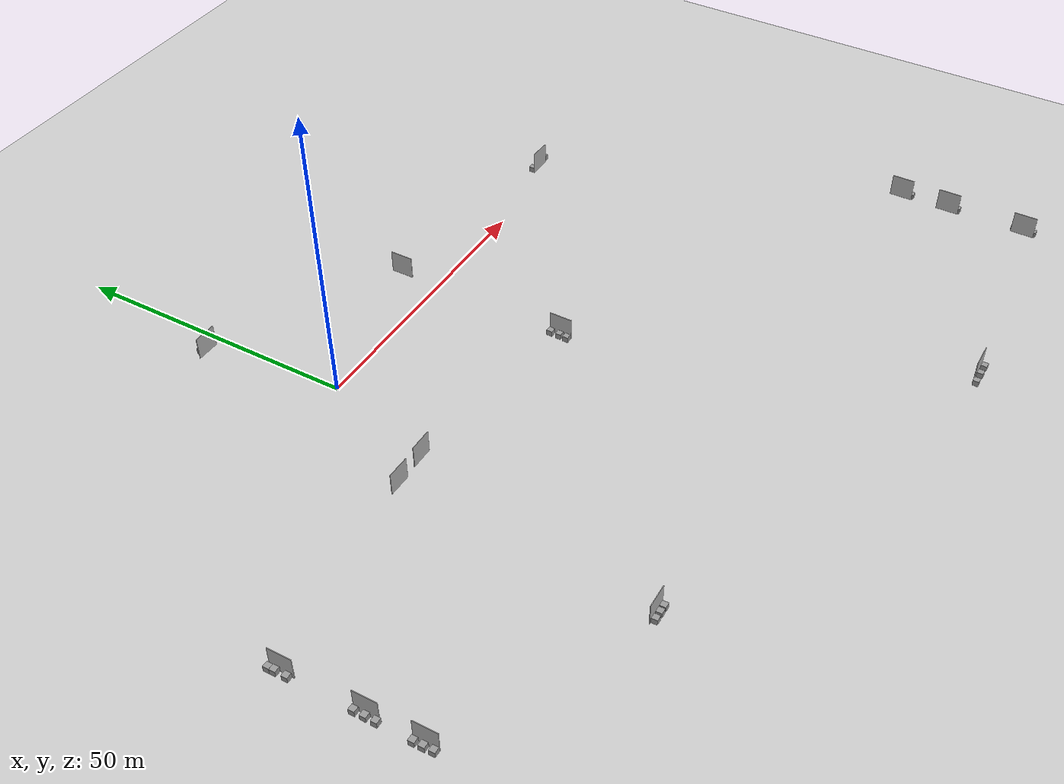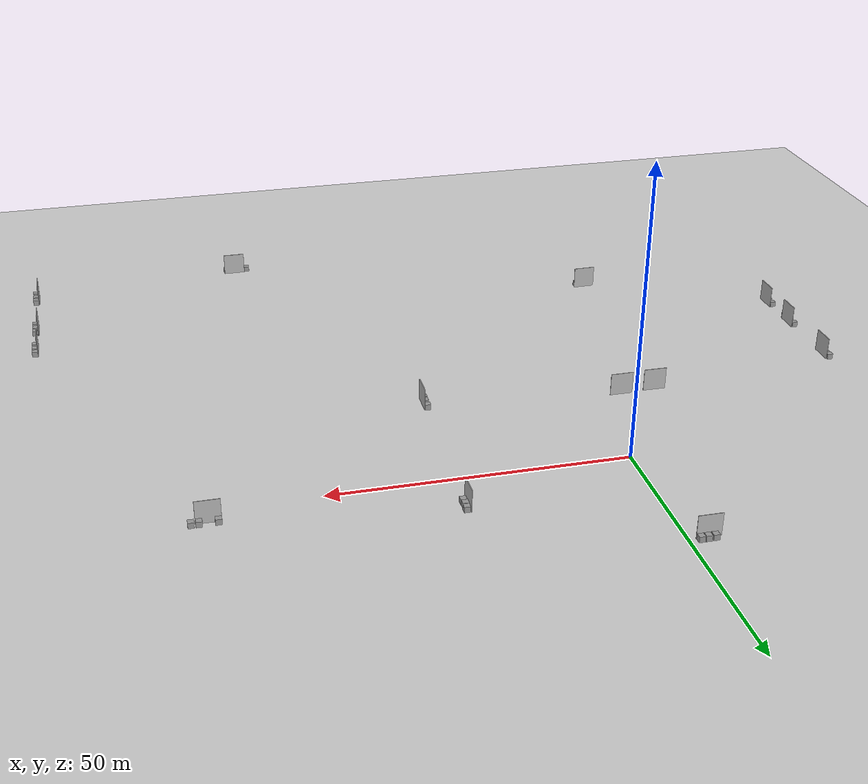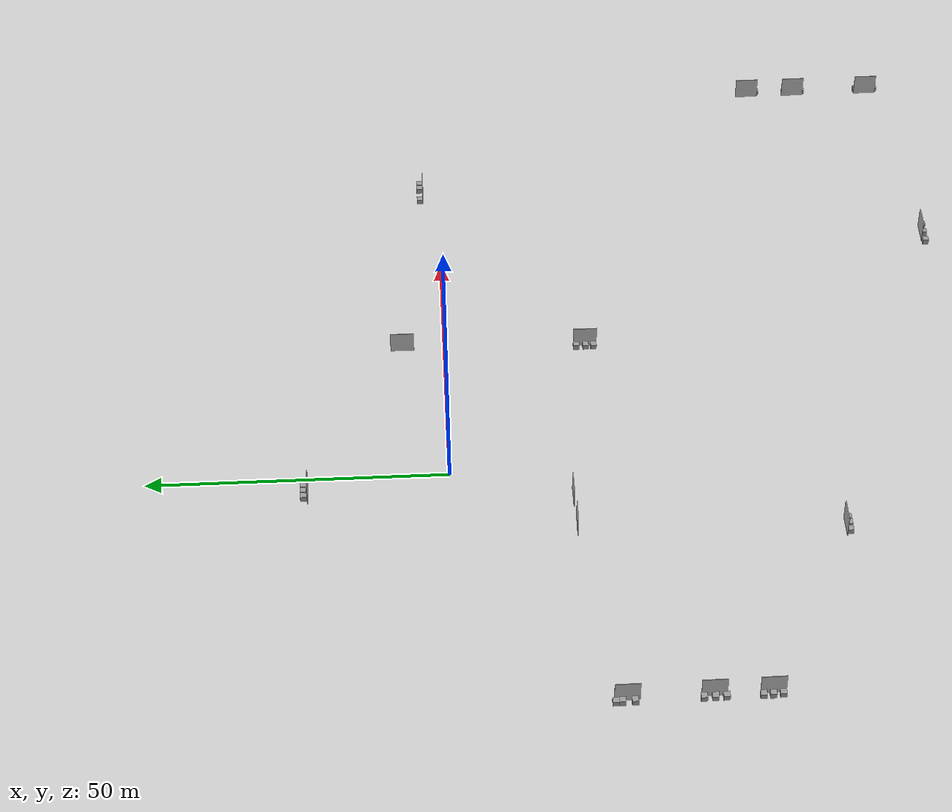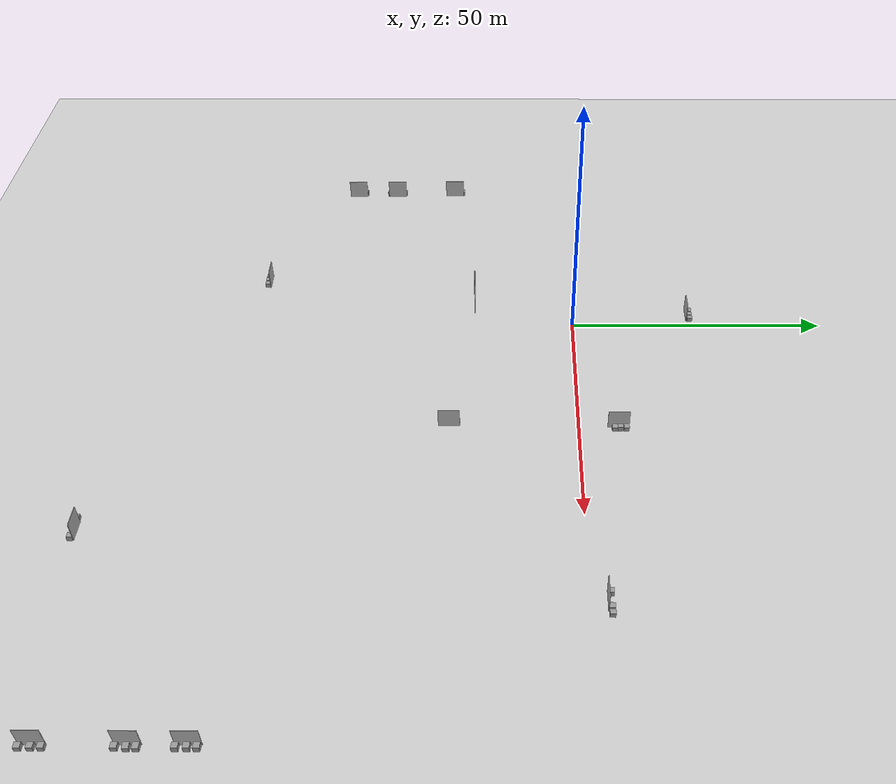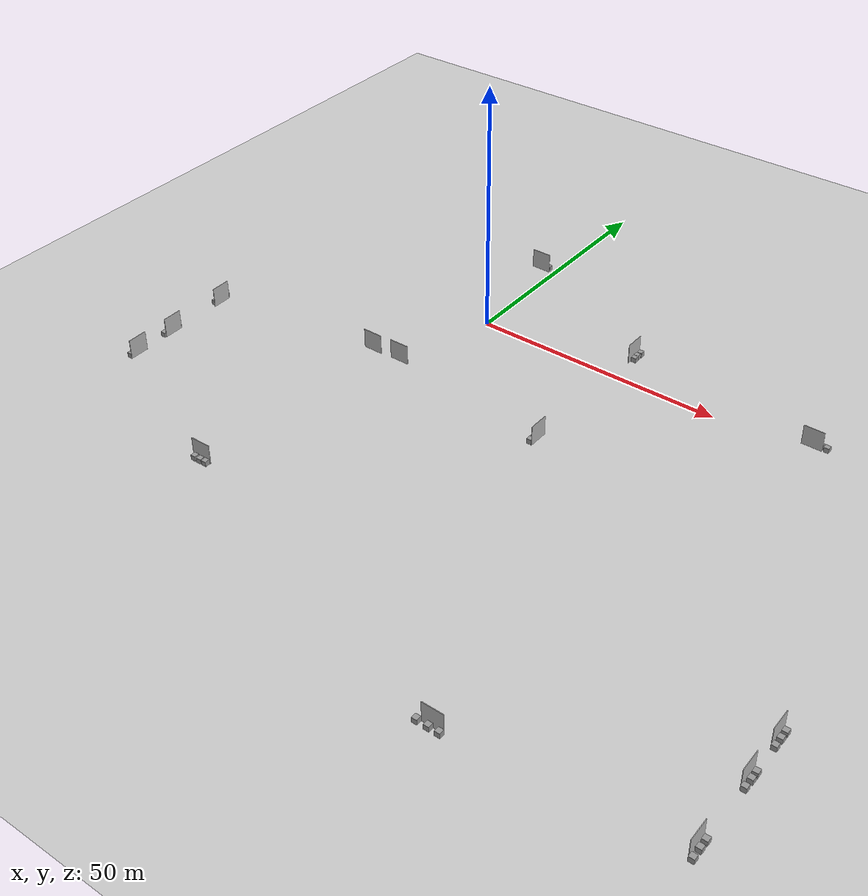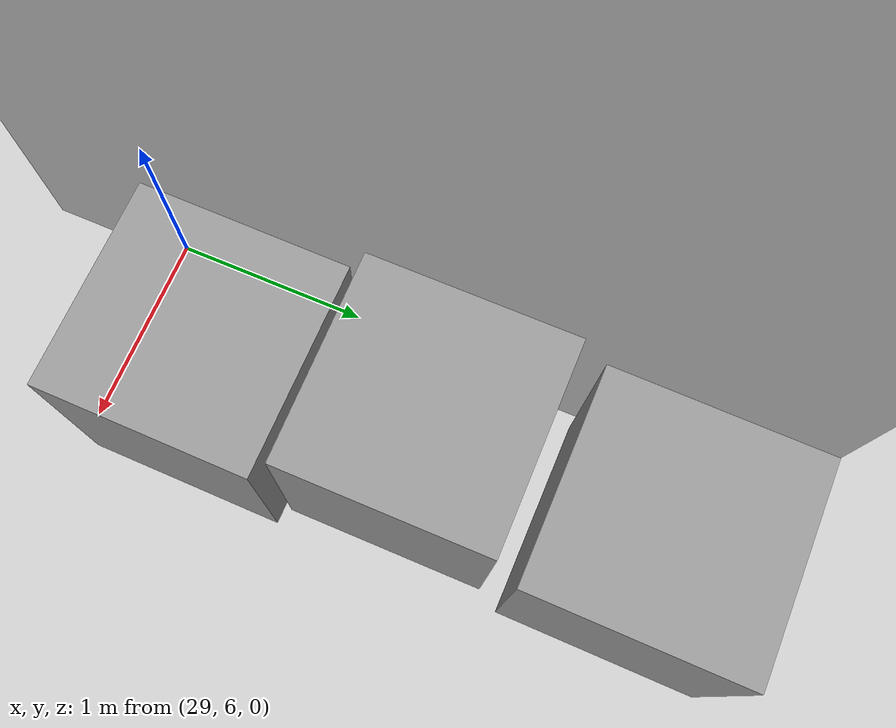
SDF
<sdf version="1.7">
 <world name="default">
  <model name="ground_plane">
   <static>1</static>
   <link name="link">
    <collision name="collision">
     <geometry><plane><normal>0 0 1</normal><size>100 100</size></plane></geometry>
     <surface><friction><ode><mu>100</mu><mu2>50</mu2></ode></friction></surface>
    </collision>
    <visual name="visual">
     <cast_shadows>0</cast_shadows>
     <geometry><plane><normal>0 0 1</normal><size>100 100</size></plane></geometry>
     <material>
      <script><uri>file://media/materials/scripts/gazebo.material</uri><name>Gazebo/Grey</name></script>
     </material>
    </visual>
   </link>
  </model>
  <light name="sun" type="directional">
   <pose>0 0 10 0 -0 0</pose>
   <diffuse>0.8 0.8 0.8 1</diffuse>
   <specular>0.2 0.2 0.2 1</specular>
   <attenuation>
    <range>1000</range>
    <constant>0.9</constant>
    <linear>0.01</linear>
    <quadratic>0.001</quadratic>
   </attenuation>
   <direction>-0.5 0.1 -0.9</direction>
   <spot><inner_angle>0</inner_angle><outer_angle>0</outer_angle><falloff>0</falloff></spot>
  </light>
  <gravity>0 0 -9.8</gravity>
  <magnetic_field>6e-06 2.3e-05 -4.2e-05</magnetic_field>
  <atmosphere type="adiabatic"/>
  <physics name="default_physics" default="0" type="ode">
   <max_step_size>0.001</max_step_size>
   <real_time_factor>1</real_time_factor>
   <real_time_update_rate>1000</real_time_update_rate>
  </physics>
  <scene><ambient>0.4 0.4 0.4 1</ambient><background>0.7 0.7 0.7 1</background><shadows>1</shadows></scene>
  <audio><device>default</device></audio>
  <spherical_coordinates>
   <surface_model>EARTH_WGS84</surface_model>
   <latitude_deg>0</latitude_deg>
   <longitude_deg>0</longitude_deg>
   <elevation>0</elevation>
   <heading_deg>0</heading_deg>
  </spherical_coordinates>
  <model name="unit_box_2">
   <pose>29.6316 8.72065 0.499995 1e-05 -0 -0.004184</pose>
   <link name="link">
    <inertial>
     <mass>1</mass>
     <inertia>
      <ixx>0.166667</ixx>
      <ixy>0</ixy>
      <ixz>0</ixz>
      <iyy>0.166667</iyy>
      <iyz>0</iyz>
      <izz>0.166667</izz>
     </inertia>
    </inertial>
    <collision name="collision"><geometry><box><size>1 1 1</size></box></geometry></collision>
    <visual name="visual">
     <geometry><box><size>1 1 1</size></box></geometry>
     <material>
      <script><name>Gazebo/Grey</name><uri>file://media/materials/scripts/gazebo.material</uri></script>
     </material>
    </visual>
   </link>
  </model>
  <model name="unit_box_3">
   <pose>29.56 7.60647 0.499995 0 -1e-05 0.002866</pose>
   <link name="link">
    <inertial>
     <mass>1</mass>
     <inertia>
      <ixx>0.166667</ixx>
      <ixy>0</ixy>
      <ixz>0</ixz>
      <iyy>0.166667</iyy>
      <iyz>0</iyz>
      <izz>0.166667</izz>
     </inertia>
    </inertial>
    <collision name="collision"><geometry><box><size>1 1 1</size></box></geometry></collision>
    <visual name="visual">
     <geometry><box><size>1 1 1</size></box></geometry>
     <material>
      <script><name>Gazebo/Grey</name><uri>file://media/materials/scripts/gazebo.material</uri></script>
     </material>
    </visual>
   </link>
  </model>
  <model name="Van_gogh1">
   <pose>-4.76068 23.3313 2 -0 3e-06 1.56156</pose>
   <link name="box">
    <pose>0 -1.5 0 0 -0 0</pose>
    <collision name="collision"><geometry><box><size>0.1 4 4</size></box></geometry></collision>
    <visual name="visual">
     <geometry><box><size>0.1 4 4</size></box></geometry>
     <material>
      <script>
       <uri>model://van_gogh1/materials/scripts</uri>
       <uri>model://van_gogh1/materials/textures</uri>
       <name>Van_gogh1/Image</name>
      </script>
     </material>
    </visual>
    <inertial>
     <inertia><ixx>1</ixx><ixy>0</ixy><ixz>0</ixz><iyy>1</iyy><iyz>0</iyz><izz>1</izz></inertia>
     <mass>1</mass>
    </inertial>
   </link>
  </model>
  <model name="unit_box_4">
   <pose>-1.76028 23.9773 0.5 0 -0 1.9e-05</pose>
   <link name="link">
    <inertial>
     <mass>1</mass>
     <inertia>
      <ixx>0.166667</ixx>
      <ixy>0</ixy>
      <ixz>0</ixz>
      <iyy>0.166667</iyy>
      <iyz>0</iyz>
      <izz>0.166667</izz>
     </inertia>
    </inertial>
    <collision name="collision"><geometry><box><size>1 1 1</size></box></geometry></collision>
    <visual name="visual">
     <geometry><box><size>1 1 1</size></box></geometry>
     <material>
      <script><name>Gazebo/Grey</name><uri>file://media/materials/scripts/gazebo.material</uri></script>
     </material>
    </visual>
   </link>
  </model>
  <model name="unit_box_5">
   <pose>-2.86607 23.9664 0.5 0 -0 0</pose>
   <link name="link">
    <inertial>
     <mass>1</mass>
     <inertia>
      <ixx>0.166667</ixx>
      <ixy>0</ixy>
      <ixz>0</ixz>
      <iyy>0.166667</iyy>
      <iyz>0</iyz>
      <izz>0.166667</izz>
     </inertia>
    </inertial>
    <collision name="collision"><geometry><box><size>1 1 1</size></box></geometry></collision>
    <visual name="visual">
     <geometry><box><size>1 1 1</size></box></geometry>
     <material>
      <script><name>Gazebo/Grey</name><uri>file://media/materials/scripts/gazebo.material</uri></script>
     </material>
    </visual>
   </link>
  </model>
  <model name="unit_box_7">
   <pose>-4.0375 23.9801 0.5 0 -0 -0.011993</pose>
   <link name="link">
    <inertial>
     <mass>1</mass>
     <inertia>
      <ixx>0.166667</ixx>
      <ixy>0</ixy>
      <ixz>0</ixz>
      <iyy>0.166667</iyy>
      <iyz>0</iyz>
      <izz>0.166667</izz>
     </inertia>
    </inertial>
    <collision name="collision"><geometry><box><size>1 1 1</size></box></geometry></collision>
    <visual name="visual">
     <geometry><box><size>1 1 1</size></box></geometry>
     <material>
      <script><name>Gazebo/Grey</name><uri>file://media/materials/scripts/gazebo.material</uri></script>
     </material>
    </visual>
   </link>
  </model>
  <model name="Van_gogh1_0">
   <pose>29.0075 8.78242 2 -0 -4e-06 0.000788</pose>
   <link name="box">
    <pose>0 -1.5 0 0 -0 0</pose>
    <collision name="collision"><geometry><box><size>0.1 4 4</size></box></geometry></collision>
    <visual name="visual">
     <geometry><box><size>0.1 4 4</size></box></geometry>
     <material>
      <script>
       <uri>model://van_gogh1/materials/scripts</uri>
       <uri>model://van_gogh1/materials/textures</uri>
       <name>Van_gogh1/Image</name>
      </script>
     </material>
    </visual>
    <inertial>
     <inertia><ixx>1</ixx><ixy>0</ixy><ixz>0</ixz><iyy>1</iyy><iyz>0</iyz><izz>1</izz></inertia>
     <mass>1</mass>
    </inertial>
   </link>
  </model>
  <model name="unit_box_8">
   <pose>29.6461 6.57245 0.499995 -1e-05 -0 -0.004304</pose>
   <link name="link">
    <inertial>
     <mass>1</mass>
     <inertia>
      <ixx>0.166667</ixx>
      <ixy>0</ixy>
      <ixz>0</ixz>
      <iyy>0.166667</iyy>
      <iyz>0</iyz>
      <izz>0.166667</izz>
     </inertia>
    </inertial>
    <collision name="collision"><geometry><box><size>1 1 1</size></box></geometry></collision>
    <visual name="visual">
     <geometry><box><size>1 1 1</size></box></geometry>
     <material>
      <script><name>Gazebo/Grey</name><uri>file://media/materials/scripts/gazebo.material</uri></script>
     </material>
    </visual>
   </link>
  </model>
  <model name="Van_gogh1_clone">
   <pose>-13.6302 -20.2005 2 2e-06 4e-06 1.56156</pose>
   <link name="box">
    <pose>0 -1.5 0 0 -0 0</pose>
    <collision name="collision"><geometry><box><size>0.1 4 4</size></box></geometry></collision>
    <visual name="visual">
     <geometry><box><size>0.1 4 4</size></box></geometry>
     <material>
      <script>
       <uri>model://van_gogh1/materials/scripts</uri>
       <uri>model://van_gogh1/materials/textures</uri>
       <name>Van_gogh1/Image</name>
      </script>
     </material>
    </visual>
    <inertial>
     <inertia><ixx>1</ixx><ixy>0</ixy><ixz>0</ixz><iyy>1</iyy><iyz>0</iyz><izz>1</izz></inertia>
     <mass>1</mass>
    </inertial>
   </link>
  </model>
  <model name="Van_gogh1_clone_clone_clone">
   <pose>-7.4246 -19.9713 2 -2e-06 -0.00015 1.57794</pose>
   <link name="box">
    <pose>0 -1.5 0 0 -0 0</pose>
    <collision name="collision"><geometry><box><size>0.1 4 4</size></box></geometry></collision>
    <visual name="visual">
     <geometry><box><size>0.1 4 4</size></box></geometry>
     <material>
      <script>
       <uri>model://van_gogh1/materials/scripts</uri>
       <uri>model://van_gogh1/materials/textures</uri>
       <name>Van_gogh1/Image</name>
      </script>
     </material>
    </visual>
    <inertial>
     <inertia><ixx>1</ixx><ixy>0</ixy><ixz>0</ixz><iyy>1</iyy><iyz>0</iyz><izz>1</izz></inertia>
     <mass>1</mass>
    </inertial>
   </link>
  </model>
  <model name="Van_gogh1_clone_0">
   <pose>-47.0185 -27.0788 2 0 -0 -3.12867</pose>
   <link name="box">
    <pose>0 -1.5 0 0 -0 0</pose>
    <collision name="collision"><geometry><box><size>0.1 4 4</size></box></geometry></collision>
    <visual name="visual">
     <geometry><box><size>0.1 4 4</size></box></geometry>
     <material>
      <script>
       <uri>model://van_gogh1/materials/scripts</uri>
       <uri>model://van_gogh1/materials/textures</uri>
       <name>Van_gogh1/Image</name>
      </script>
     </material>
    </visual>
    <inertial>
     <inertia><ixx>1</ixx><ixy>0</ixy><ixz>0</ixz><iyy>1</iyy><iyz>0</iyz><izz>1</izz></inertia>
     <mass>1</mass>
    </inertial>
   </link>
  </model>
  <model name="unit_box_7_clone">
   <pose>-47.6067 -24.7986 0.5 0 -0 0.011442</pose>
   <link name="link">
    <inertial>
     <mass>1</mass>
     <inertia>
      <ixx>0.166667</ixx>
      <ixy>0</ixy>
      <ixz>0</ixz>
      <iyy>0.166667</iyy>
      <iyz>0</iyz>
      <izz>0.166667</izz>
     </inertia>
    </inertial>
    <collision name="collision"><geometry><box><size>1 1 1</size></box></geometry></collision>
    <visual name="visual">
     <geometry><box><size>1 1 1</size></box></geometry>
     <material>
      <script><name>Gazebo/Grey</name><uri>file://media/materials/scripts/gazebo.material</uri></script>
     </material>
    </visual>
   </link>
  </model>
  <model name="unit_box_7_clone_0">
   <pose>-47.5905 -26.7553 0.499995 0 1e-05 0.01358</pose>
   <link name="link">
    <inertial>
     <mass>1</mass>
     <inertia>
      <ixx>0.166667</ixx>
      <ixy>0</ixy>
      <ixz>0</ixz>
      <iyy>0.166667</iyy>
      <iyz>0</iyz>
      <izz>0.166667</izz>
     </inertia>
    </inertial>
    <collision name="collision"><geometry><box><size>1 1 1</size></box></geometry></collision>
    <visual name="visual">
     <geometry><box><size>1 1 1</size></box></geometry>
     <material>
      <script><name>Gazebo/Grey</name><uri>file://media/materials/scripts/gazebo.material</uri></script>
     </material>
    </visual>
   </link>
  </model>
  <model name="unit_box_7_clone_1">
   <pose>-47.6348 -23.7966 0.5 0 -0 0.007335</pose>
   <link name="link">
    <inertial>
     <mass>1</mass>
     <inertia>
      <ixx>0.166667</ixx>
      <ixy>0</ixy>
      <ixz>0</ixz>
      <iyy>0.166667</iyy>
      <iyz>0</iyz>
      <izz>0.166667</izz>
     </inertia>
    </inertial>
    <collision name="collision"><geometry><box><size>1 1 1</size></box></geometry></collision>
    <visual name="visual">
     <geometry><box><size>1 1 1</size></box></geometry>
     <material>
      <script><name>Gazebo/Grey</name><uri>file://media/materials/scripts/gazebo.material</uri></script>
     </material>
    </visual>
   </link>
  </model>
  <model name="Van_gogh1_clone_0_clone">
   <pose>-46.7302 -49.4421 1.99999 -2e-06 -2e-06 -3.12819</pose>
   <link name="box">
    <pose>0 -1.5 0 0 -0 0</pose>
    <collision name="collision"><geometry><box><size>0.1 4 4</size></box></geometry></collision>
    <visual name="visual">
     <geometry><box><size>0.1 4 4</size></box></geometry>
     <material>
      <script>
       <uri>model://van_gogh1/materials/scripts</uri>
       <uri>model://van_gogh1/materials/textures</uri>
       <name>Van_gogh1/Image</name>
      </script>
     </material>
    </visual>
    <inertial>
     <inertia><ixx>1</ixx><ixy>0</ixy><ixz>0</ixz><iyy>1</iyy><iyz>0</iyz><izz>1</izz></inertia>
     <mass>1</mass>
    </inertial>
   </link>
  </model>
  <model name="unit_box_7_clone_0_clone">
   <pose>-47.2807 -49.4195 0.5 0 -0 0.013645</pose>
   <link name="link">
    <inertial>
     <mass>1</mass>
     <inertia>
      <ixx>0.166667</ixx>
      <ixy>0</ixy>
      <ixz>0</ixz>
      <iyy>0.166667</iyy>
      <iyz>0</iyz>
      <izz>0.166667</izz>
     </inertia>
    </inertial>
    <collision name="collision"><geometry><box><size>1 1 1</size></box></geometry></collision>
    <visual name="visual">
     <geometry><box><size>1 1 1</size></box></geometry>
     <material>
      <script><name>Gazebo/Grey</name><uri>file://media/materials/scripts/gazebo.material</uri></script>
     </material>
    </visual>
   </link>
  </model>
  <model name="unit_box_7_clone_clone">
   <pose>-47.3778 -47.87 0.499995 0 1e-05 0.011442</pose>
   <link name="link">
    <inertial>
     <mass>1</mass>
     <inertia>
      <ixx>0.166667</ixx>
      <ixy>0</ixy>
      <ixz>0</ixz>
      <iyy>0.166667</iyy>
      <iyz>0</iyz>
      <izz>0.166667</izz>
     </inertia>
    </inertial>
    <collision name="collision"><geometry><box><size>1 1 1</size></box></geometry></collision>
    <visual name="visual">
     <geometry><box><size>1 1 1</size></box></geometry>
     <material>
      <script><name>Gazebo/Grey</name><uri>file://media/materials/scripts/gazebo.material</uri></script>
     </material>
    </visual>
   </link>
  </model>
  <model name="unit_box_7_clone_clone_0">
   <pose>-47.3822 -46.3686 0.499995 1e-05 -0 0.011442</pose>
   <link name="link">
    <inertial>
     <mass>1</mass>
     <inertia>
      <ixx>0.166667</ixx>
      <ixy>0</ixy>
      <ixz>0</ixz>
      <iyy>0.166667</iyy>
      <iyz>0</iyz>
      <izz>0.166667</izz>
     </inertia>
    </inertial>
    <collision name="collision"><geometry><box><size>1 1 1</size></box></geometry></collision>
    <visual name="visual">
     <geometry><box><size>1 1 1</size></box></geometry>
     <material>
      <script><name>Gazebo/Grey</name><uri>file://media/materials/scripts/gazebo.material</uri></script>
     </material>
    </visual>
   </link>
  </model>
  <model name="Van_gogh1_clone_1">
   <pose>-15.7782 -63.5166 2 -0 -1e-06 1.58371</pose>
   <link name="box">
    <pose>0 -1.5 0 0 -0 0</pose>
    <collision name="collision"><geometry><box><size>0.1 4 4</size></box></geometry></collision>
    <visual name="visual">
     <geometry><box><size>0.1 4 4</size></box></geometry>
     <material>
      <script>
       <uri>model://van_gogh1/materials/scripts</uri>
       <uri>model://van_gogh1/materials/textures</uri>
       <name>Van_gogh1/Image</name>
      </script>
     </material>
    </visual>
    <inertial>
     <inertia><ixx>1</ixx><ixy>0</ixy><ixz>0</ixz><iyy>1</iyy><iyz>0</iyz><izz>1</izz></inertia>
     <mass>1</mass>
    </inertial>
   </link>
  </model>
  <model name="unit_box_7_clone_2">
   <pose>-15.3967 -64.0618 0.499995 1e-05 -0 0.013007</pose>
   <link name="link">
    <inertial>
     <mass>1</mass>
     <inertia>
      <ixx>0.166667</ixx>
      <ixy>0</ixy>
      <ixz>0</ixz>
      <iyy>0.166667</iyy>
      <iyz>0</iyz>
      <izz>0.166667</izz>
     </inertia>
    </inertial>
    <collision name="collision"><geometry><box><size>1 1 1</size></box></geometry></collision>
    <visual name="visual">
     <geometry><box><size>1 1 1</size></box></geometry>
     <material>
      <script><name>Gazebo/Grey</name><uri>file://media/materials/scripts/gazebo.material</uri></script>
     </material>
    </visual>
   </link>
  </model>
  <model name="unit_box_7_clone_2_clone">
   <pose>-14.0765 -64.0615 0.499995 1e-05 0 0.012886</pose>
   <link name="link">
    <inertial>
     <mass>1</mass>
     <inertia>
      <ixx>0.166667</ixx>
      <ixy>0</ixy>
      <ixz>0</ixz>
      <iyy>0.166667</iyy>
      <iyz>0</iyz>
      <izz>0.166667</izz>
     </inertia>
    </inertial>
    <collision name="collision"><geometry><box><size>1 1 1</size></box></geometry></collision>
    <visual name="visual">
     <geometry><box><size>1 1 1</size></box></geometry>
     <material>
      <script><name>Gazebo/Grey</name><uri>file://media/materials/scripts/gazebo.material</uri></script>
     </material>
    </visual>
   </link>
  </model>
  <model name="unit_box_7_clone_2_clone_0">
   <pose>-12.9065 -64.046 0.499995 0 1e-05 0.012913</pose>
   <link name="link">
    <inertial>
     <mass>1</mass>
     <inertia>
      <ixx>0.166667</ixx>
      <ixy>0</ixy>
      <ixz>0</ixz>
      <iyy>0.166667</iyy>
      <iyz>0</iyz>
      <izz>0.166667</izz>
     </inertia>
    </inertial>
    <collision name="collision"><geometry><box><size>1 1 1</size></box></geometry></collision>
    <visual name="visual">
     <geometry><box><size>1 1 1</size></box></geometry>
     <material>
      <script><name>Gazebo/Grey</name><uri>file://media/materials/scripts/gazebo.material</uri></script>
     </material>
    </visual>
   </link>
  </model>
  <model name="Van_gogh1_clone_2">
   <pose>52.3196 -86.1842 1.99999 -2e-06 -2e-06 1.56936</pose>
   <link name="box">
    <pose>0 -1.5 0 0 -0 0</pose>
    <collision name="collision"><geometry><box><size>0.1 4 4</size></box></geometry></collision>
    <visual name="visual">
     <geometry><box><size>0.1 4 4</size></box></geometry>
     <material>
      <script>
       <uri>model://van_gogh1/materials/scripts</uri>
       <uri>model://van_gogh1/materials/textures</uri>
       <name>Van_gogh1/Image</name>
      </script>
     </material>
    </visual>
    <inertial>
     <inertia><ixx>1</ixx><ixy>0</ixy><ixz>0</ixz><iyy>1</iyy><iyz>0</iyz><izz>1</izz></inertia>
     <mass>1</mass>
    </inertial>
   </link>
  </model>
  <model name="unit_box_7_clone_3_clone">
   <pose>55.3945 -86.7386 0.499995 0 -1e-05 -0.001469</pose>
   <link name="link">
    <inertial>
     <mass>1</mass>
     <inertia>
      <ixx>0.166667</ixx>
      <ixy>0</ixy>
      <ixz>0</ixz>
      <iyy>0.166667</iyy>
      <iyz>0</iyz>
      <izz>0.166667</izz>
     </inertia>
    </inertial>
    <collision name="collision"><geometry><box><size>1 1 1</size></box></geometry></collision>
    <visual name="visual">
     <geometry><box><size>1 1 1</size></box></geometry>
     <material>
      <script><name>Gazebo/Grey</name><uri>file://media/materials/scripts/gazebo.material</uri></script>
     </material>
    </visual>
   </link>
  </model>
  <model name="unit_box_7_clone_3_clone_clone_clone">
   <pose>51.3408 -86.7405 0.499995 1e-05 -0 0.000942</pose>
   <link name="link">
    <inertial>
     <mass>1</mass>
     <inertia>
      <ixx>0.166667</ixx>
      <ixy>0</ixy>
      <ixz>0</ixz>
      <iyy>0.166667</iyy>
      <iyz>0</iyz>
      <izz>0.166667</izz>
     </inertia>
    </inertial>
    <collision name="collision"><geometry><box><size>1 1 1</size></box></geometry></collision>
    <visual name="visual">
     <geometry><box><size>1 1 1</size></box></geometry>
     <material>
      <script><name>Gazebo/Grey</name><uri>file://media/materials/scripts/gazebo.material</uri></script>
     </material>
    </visual>
   </link>
  </model>
  <model name="unit_box_7_clone_3_clone_clone_clone_clone">
   <pose>53.4372 -86.7367 0.499995 0 -1e-05 -0.001167</pose>
   <link name="link">
    <inertial>
     <mass>1</mass>
     <inertia>
      <ixx>0.166667</ixx>
      <ixy>0</ixy>
      <ixz>0</ixz>
      <iyy>0.166667</iyy>
      <iyz>0</iyz>
      <izz>0.166667</izz>
     </inertia>
    </inertial>
    <collision name="collision"><geometry><box><size>1 1 1</size></box></geometry></collision>
    <visual name="visual">
     <geometry><box><size>1 1 1</size></box></geometry>
     <material>
      <script><name>Gazebo/Grey</name><uri>file://media/materials/scripts/gazebo.material</uri></script>
     </material>
    </visual>
   </link>
  </model>
  <model name="Van_gogh1_clone_3">
   <pose>66.483 2.86481 2 0 -3e-06 1.56733</pose>
   <link name="box">
    <pose>0 -1.5 0 0 -0 0</pose>
    <collision name="collision"><geometry><box><size>0.1 4 4</size></box></geometry></collision>
    <visual name="visual">
     <geometry><box><size>0.1 4 4</size></box></geometry>
     <material>
      <script>
       <uri>model://van_gogh1/materials/scripts</uri>
       <uri>model://van_gogh1/materials/textures</uri>
       <name>Van_gogh1/Image</name>
      </script>
     </material>
    </visual>
    <inertial>
     <inertia><ixx>1</ixx><ixy>0</ixy><ixz>0</ixz><iyy>1</iyy><iyz>0</iyz><izz>1</izz></inertia>
     <mass>1</mass>
    </inertial>
   </link>
  </model>
  <model name="unit_box_2_clone">
   <pose>66.52 3.42718 0.499995 -0 -1e-05 0.013264</pose>
   <link name="link">
    <inertial>
     <mass>1</mass>
     <inertia>
      <ixx>0.166667</ixx>
      <ixy>0</ixy>
      <ixz>0</ixz>
      <iyy>0.166667</iyy>
      <iyz>0</iyz>
      <izz>0.166667</izz>
     </inertia>
    </inertial>
    <collision name="collision"><geometry><box><size>1 1 1</size></box></geometry></collision>
    <visual name="visual">
     <geometry><box><size>1 1 1</size></box></geometry>
     <material>
      <script><name>Gazebo/Grey</name><uri>file://media/materials/scripts/gazebo.material</uri></script>
     </material>
    </visual>
   </link>
  </model>
  <model name="unit_box_2_clone_clone">
   <pose>69.4329 3.41765 0.499995 1e-05 0 -0.02725</pose>
   <link name="link">
    <inertial>
     <mass>1</mass>
     <inertia>
      <ixx>0.166667</ixx>
      <ixy>0</ixy>
      <ixz>0</ixz>
      <iyy>0.166667</iyy>
      <iyz>0</iyz>
      <izz>0.166667</izz>
     </inertia>
    </inertial>
    <collision name="collision"><geometry><box><size>1 1 1</size></box></geometry></collision>
    <visual name="visual">
     <geometry><box><size>1 1 1</size></box></geometry>
     <material>
      <script><name>Gazebo/Grey</name><uri>file://media/materials/scripts/gazebo.material</uri></script>
     </material>
    </visual>
   </link>
  </model>
  <model name="unit_box_2_clone_clone_clone">
   <pose>70.6445 3.40819 0.499995 0 1e-05 -0.008265</pose>
   <link name="link">
    <inertial>
     <mass>1</mass>
     <inertia>
      <ixx>0.166667</ixx>
      <ixy>0</ixy>
      <ixz>0</ixz>
      <iyy>0.166667</iyy>
      <iyz>0</iyz>
      <izz>0.166667</izz>
     </inertia>
    </inertial>
    <collision name="collision"><geometry><box><size>1 1 1</size></box></geometry></collision>
    <visual name="visual">
     <geometry><box><size>1 1 1</size></box></geometry>
     <material>
      <script><name>Gazebo/Grey</name><uri>file://media/materials/scripts/gazebo.material</uri></script>
     </material>
    </visual>
   </link>
  </model>
  <model name="Van_gogh1_clone_0_clone_clone">
   <pose>28.6992 -25.6104 1.99999 -2e-06 -8e-06 3.13529</pose>
   <link name="box">
    <pose>0 -1.5 0 0 -0 0</pose>
    <collision name="collision"><geometry><box><size>0.1 4 4</size></box></geometry></collision>
    <visual name="visual">
     <geometry><box><size>0.1 4 4</size></box></geometry>
     <material>
      <script>
       <uri>model://van_gogh1/materials/scripts</uri>
       <uri>model://van_gogh1/materials/textures</uri>
       <name>Van_gogh1/Image</name>
      </script>
     </material>
    </visual>
    <inertial>
     <inertia><ixx>1</ixx><ixy>0</ixy><ixz>0</ixz><iyy>1</iyy><iyz>0</iyz><izz>1</izz></inertia>
     <mass>1</mass>
    </inertial>
   </link>
  </model>
  <model name="unit_box_2_clone_clone_clone_clone">
   <pose>28.1058 -25.5665 0.499995 0 1e-05 -0.008265</pose>
   <link name="link">
    <inertial>
     <mass>1</mass>
     <inertia>
      <ixx>0.166667</ixx>
      <ixy>0</ixy>
      <ixz>0</ixz>
      <iyy>0.166667</iyy>
      <iyz>0</iyz>
      <izz>0.166667</izz>
     </inertia>
    </inertial>
    <collision name="collision"><geometry><box><size>1 1 1</size></box></geometry></collision>
    <visual name="visual">
     <geometry><box><size>1 1 1</size></box></geometry>
     <material>
      <script><name>Gazebo/Grey</name><uri>file://media/materials/scripts/gazebo.material</uri></script>
     </material>
    </visual>
   </link>
  </model>
  <model name="unit_box_2_clone_clone_clone_clone_0">
   <pose>28.1578 -24.2028 0.499995 -0 -1e-05 -0.00653</pose>
   <link name="link">
    <inertial>
     <mass>1</mass>
     <inertia>
      <ixx>0.166667</ixx>
      <ixy>0</ixy>
      <ixz>0</ixz>
      <iyy>0.166667</iyy>
      <iyz>0</iyz>
      <izz>0.166667</izz>
     </inertia>
    </inertial>
    <collision name="collision"><geometry><box><size>1 1 1</size></box></geometry></collision>
    <visual name="visual">
     <geometry><box><size>1 1 1</size></box></geometry>
     <material>
      <script><name>Gazebo/Grey</name><uri>file://media/materials/scripts/gazebo.material</uri></script>
     </material>
    </visual>
   </link>
  </model>
  <model name="unit_box_2_clone_clone_clone_clone_1">
   <pose>28.1582 -22.5858 0.499995 0 1e-05 -0.008265</pose>
   <link name="link">
    <inertial>
     <mass>1</mass>
     <inertia>
      <ixx>0.166667</ixx>
      <ixy>0</ixy>
      <ixz>0</ixz>
      <iyy>0.166667</iyy>
      <iyz>0</iyz>
      <izz>0.166667</izz>
     </inertia>
    </inertial>
    <collision name="collision"><geometry><box><size>1 1 1</size></box></geometry></collision>
    <visual name="visual">
     <geometry><box><size>1 1 1</size></box></geometry>
     <material>
      <script><name>Gazebo/Grey</name><uri>file://media/materials/scripts/gazebo.material</uri></script>
     </material>
    </visual>
   </link>
  </model>
  <model name="Van_gogh1_clone_0_clone_clone_clone">
   <pose>93.0689 -83.0792 1.99999 -2e-06 -0 3.14016</pose>
   <link name="box">
    <pose>0 -1.5 0 0 -0 0</pose>
    <collision name="collision"><geometry><box><size>0.1 4 4</size></box></geometry></collision>
    <visual name="visual">
     <geometry><box><size>0.1 4 4</size></box></geometry>
     <material>
      <script>
       <uri>model://van_gogh1/materials/scripts</uri>
       <uri>model://van_gogh1/materials/textures</uri>
       <name>Van_gogh1/Image</name>
      </script>
     </material>
    </visual>
    <inertial>
     <inertia><ixx>1</ixx><ixy>0</ixy><ixz>0</ixz><iyy>1</iyy><iyz>0</iyz><izz>1</izz></inertia>
     <mass>1</mass>
    </inertial>
   </link>
  </model>
  <model name="unit_box_7_clone_3_clone_clone_clone_clone_0">
   <pose>93.6248 -79.9997 0.499995 1e-05 0 -0.001474</pose>
   <link name="link">
    <inertial>
     <mass>1</mass>
     <inertia>
      <ixx>0.166667</ixx>
      <ixy>0</ixy>
      <ixz>0</ixz>
      <iyy>0.166667</iyy>
      <iyz>0</iyz>
      <izz>0.166667</izz>
     </inertia>
    </inertial>
    <collision name="collision"><geometry><box><size>1 1 1</size></box></geometry></collision>
    <visual name="visual">
     <geometry><box><size>1 1 1</size></box></geometry>
     <material>
      <script><name>Gazebo/Grey</name><uri>file://media/materials/scripts/gazebo.material</uri></script>
     </material>
    </visual>
   </link>
  </model>
  <model name="unit_box_7_clone_3_clone_clone_clone_clone_0_clone">
   <pose>93.6251 -83.387 0.499995 1e-05 0 -0.001474</pose>
   <link name="link">
    <inertial>
     <mass>1</mass>
     <inertia>
      <ixx>0.166667</ixx>
      <ixy>0</ixy>
      <ixz>0</ixz>
      <iyy>0.166667</iyy>
      <iyz>0</iyz>
      <izz>0.166667</izz>
     </inertia>
    </inertial>
    <collision name="collision"><geometry><box><size>1 1 1</size></box></geometry></collision>
    <visual name="visual">
     <geometry><box><size>1 1 1</size></box></geometry>
     <material>
      <script><name>Gazebo/Grey</name><uri>file://media/materials/scripts/gazebo.material</uri></script>
     </material>
    </visual>
   </link>
  </model>
  <model name="unit_box_7_clone_3_clone_clone_clone_clone_0_clone_0">
   <pose>93.6213 -81.5495 0.499995 -1e-05 -0 -0.001466</pose>
   <link name="link">
    <inertial>
     <mass>1</mass>
     <inertia>
      <ixx>0.166667</ixx>
      <ixy>0</ixy>
      <ixz>0</ixz>
      <iyy>0.166667</iyy>
      <iyz>0</iyz>
      <izz>0.166667</izz>
     </inertia>
    </inertial>
    <collision name="collision"><geometry><box><size>1 1 1</size></box></geometry></collision>
    <visual name="visual">
     <geometry><box><size>1 1 1</size></box></geometry>
     <material>
      <script><name>Gazebo/Grey</name><uri>file://media/materials/scripts/gazebo.material</uri></script>
     </material>
    </visual>
   </link>
  </model>
  <model name="Van_gogh1_clone_0_clone_clone_clone_clone">
   <pose>93.1012 -60.5499 2 2e-06 -1e-06 3.14016</pose>
   <link name="box">
    <pose>0 -1.5 0 0 -0 0</pose>
    <collision name="collision"><geometry><box><size>0.1 4 4</size></box></geometry></collision>
    <visual name="visual">
     <geometry><box><size>0.1 4 4</size></box></geometry>
     <material>
      <script>
       <uri>model://van_gogh1/materials/scripts</uri>
       <uri>model://van_gogh1/materials/textures</uri>
       <name>Van_gogh1/Image</name>
      </script>
     </material>
    </visual>
    <inertial>
     <inertia><ixx>1</ixx><ixy>0</ixy><ixz>0</ixz><iyy>1</iyy><iyz>0</iyz><izz>1</izz></inertia>
     <mass>1</mass>
    </inertial>
   </link>
  </model>
  <model name="unit_box_7_clone_3_clone_clone_clone_clone_0_clone_1">
   <pose>93.6556 -57.6957 0.5 0 0 -0.000903</pose>
   <link name="link">
    <inertial>
     <mass>1</mass>
     <inertia>
      <ixx>0.166667</ixx>
      <ixy>0</ixy>
      <ixz>0</ixz>
      <iyy>0.166667</iyy>
      <iyz>0</iyz>
      <izz>0.166667</izz>
     </inertia>
    </inertial>
    <collision name="collision"><geometry><box><size>1 1 1</size></box></geometry></collision>
    <visual name="visual">
     <geometry><box><size>1 1 1</size></box></geometry>
     <material>
      <script><name>Gazebo/Grey</name><uri>file://media/materials/scripts/gazebo.material</uri></script>
     </material>
    </visual>
   </link>
  </model>
  <model name="unit_box_7_clone_3_clone_clone_clone_clone_0_clone_2">
   <pose>93.6553 -60.8519 0.499995 0 1e-05 0.00119</pose>
   <link name="link">
    <inertial>
     <mass>1</mass>
     <inertia>
      <ixx>0.166667</ixx>
      <ixy>0</ixy>
      <ixz>0</ixz>
      <iyy>0.166667</iyy>
      <iyz>0</iyz>
      <izz>0.166667</izz>
     </inertia>
    </inertial>
    <collision name="collision"><geometry><box><size>1 1 1</size></box></geometry></collision>
    <visual name="visual">
     <geometry><box><size>1 1 1</size></box></geometry>
     <material>
      <script><name>Gazebo/Grey</name><uri>file://media/materials/scripts/gazebo.material</uri></script>
     </material>
    </visual>
   </link>
  </model>
  <model name="unit_box_7_clone_3_clone_clone_clone_clone_0_clone_3">
   <pose>93.654 -59.1661 0.499995 0 1e-05 0.00012</pose>
   <link name="link">
    <inertial>
     <mass>1</mass>
     <inertia>
      <ixx>0.166667</ixx>
      <ixy>0</ixy>
      <ixz>0</ixz>
      <iyy>0.166667</iyy>
      <iyz>0</iyz>
      <izz>0.166667</izz>
     </inertia>
    </inertial>
    <collision name="collision"><geometry><box><size>1 1 1</size></box></geometry></collision>
    <visual name="visual">
     <geometry><box><size>1 1 1</size></box></geometry>
     <material>
      <script><name>Gazebo/Grey</name><uri>file://media/materials/scripts/gazebo.material</uri></script>
     </material>
    </visual>
   </link>
  </model>
  <model name="Van_gogh1_clone_0_clone_0">
   <pose>-46.8464 -40.4066 2 -2e-06 -5e-06 -3.12868</pose>
   <link name="box">
    <pose>0 -1.5 0 0 -0 0</pose>
    <collision name="collision"><geometry><box><size>0.1 4 4</size></box></geometry></collision>
    <visual name="visual">
     <geometry><box><size>0.1 4 4</size></box></geometry>
     <material>
      <script>
       <uri>model://van_gogh1/materials/scripts</uri>
       <uri>model://van_gogh1/materials/textures</uri>
       <name>Van_gogh1/Image</name>
      </script>
     </material>
    </visual>
    <inertial>
     <inertia><ixx>1</ixx><ixy>0</ixy><ixz>0</ixz><iyy>1</iyy><iyz>0</iyz><izz>1</izz></inertia>
     <mass>1</mass>
    </inertial>
   </link>
  </model>
  <model name="unit_box_7_clone_clone_1">
   <pose>-47.4384 -37.2715 0.499995 0 1e-05 0.012887</pose>
   <link name="link">
    <inertial>
     <mass>1</mass>
     <inertia>
      <ixx>0.166667</ixx>
      <ixy>0</ixy>
      <ixz>0</ixz>
      <iyy>0.166667</iyy>
      <iyz>0</iyz>
      <izz>0.166667</izz>
     </inertia>
    </inertial>
    <collision name="collision"><geometry><box><size>1 1 1</size></box></geometry></collision>
    <visual name="visual">
     <geometry><box><size>1 1 1</size></box></geometry>
     <material>
      <script><name>Gazebo/Grey</name><uri>file://media/materials/scripts/gazebo.material</uri></script>
     </material>
    </visual>
   </link>
  </model>
  <model name="unit_box_7_clone_clone_2">
   <pose>-47.3946 -40.7231 0.499995 1e-05 0 0.018987</pose>
   <link name="link">
    <inertial>
     <mass>1</mass>
     <inertia>
      <ixx>0.166667</ixx>
      <ixy>0</ixy>
      <ixz>0</ixz>
      <iyy>0.166667</iyy>
      <iyz>0</iyz>
      <izz>0.166667</izz>
     </inertia>
    </inertial>
    <collision name="collision"><geometry><box><size>1 1 1</size></box></geometry></collision>
    <visual name="visual">
     <geometry><box><size>1 1 1</size></box></geometry>
     <material>
      <script><name>Gazebo/Grey</name><uri>file://media/materials/scripts/gazebo.material</uri></script>
     </material>
    </visual>
   </link>
  </model>
  <model name="unit_box_7_clone_clone_1_clone">
   <pose>-47.4219 -39.0146 0.499996 0 8e-06 0.001829</pose>
   <link name="link">
    <inertial>
     <mass>1</mass>
     <inertia>
      <ixx>0.166667</ixx>
      <ixy>0</ixy>
      <ixz>0</ixz>
      <iyy>0.166667</iyy>
      <iyz>0</iyz>
      <izz>0.166667</izz>
     </inertia>
    </inertial>
    <collision name="collision"><geometry><box><size>1 1 1</size></box></geometry></collision>
    <visual name="visual">
     <geometry><box><size>1 1 1</size></box></geometry>
     <material>
      <script><name>Gazebo/Grey</name><uri>file://media/materials/scripts/gazebo.material</uri></script>
     </material>
    </visual>
   </link>
  </model>
  <model name="Van_gogh1_clone_0_clone_clone_clone_clone_clone">
   <pose>93.0943 -69.2793 2 3e-06 -3e-06 3.14016</pose>
   <link name="box">
    <pose>0 -1.5 0 0 -0 0</pose>
    <collision name="collision"><geometry><box><size>0.1 4 4</size></box></geometry></collision>
    <visual name="visual">
     <geometry><box><size>0.1 4 4</size></box></geometry>
     <material>
      <script>
       <uri>model://van_gogh1/materials/scripts</uri>
       <uri>model://van_gogh1/materials/textures</uri>
       <name>Van_gogh1/Image</name>
      </script>
     </material>
    </visual>
    <inertial>
     <inertia><ixx>1</ixx><ixy>0</ixy><ixz>0</ixz><iyy>1</iyy><iyz>0</iyz><izz>1</izz></inertia>
     <mass>1</mass>
    </inertial>
   </link>
  </model>
  <model name="unit_box_7_clone_3_clone_clone_clone_clone_0_clone_2_clone">
   <pose>93.6883 -66.4159 0.499995 0 1e-05 0.00119</pose>
   <link name="link">
    <inertial>
     <mass>1</mass>
     <inertia>
      <ixx>0.166667</ixx>
      <ixy>0</ixy>
      <ixz>0</ixz>
      <iyy>0.166667</iyy>
      <iyz>0</iyz>
      <izz>0.166667</izz>
     </inertia>
    </inertial>
    <collision name="collision"><geometry><box><size>1 1 1</size></box></geometry></collision>
    <visual name="visual">
     <geometry><box><size>1 1 1</size></box></geometry>
     <material>
      <script><name>Gazebo/Grey</name><uri>file://media/materials/scripts/gazebo.material</uri></script>
     </material>
    </visual>
   </link>
  </model>
  <model name="unit_box_7_clone_3_clone_clone_clone_clone_0_clone_2_clone_0">
   <pose>93.6461 -69.5513 0.499995 -1e-05 0 0.00119</pose>
   <link name="link">
    <inertial>
     <mass>1</mass>
     <inertia>
      <ixx>0.166667</ixx>
      <ixy>0</ixy>
      <ixz>0</ixz>
      <iyy>0.166667</iyy>
      <iyz>0</iyz>
      <izz>0.166667</izz>
     </inertia>
    </inertial>
    <collision name="collision"><geometry><box><size>1 1 1</size></box></geometry></collision>
    <visual name="visual">
     <geometry><box><size>1 1 1</size></box></geometry>
     <material>
      <script><name>Gazebo/Grey</name><uri>file://media/materials/scripts/gazebo.material</uri></script>
     </material>
    </visual>
   </link>
  </model>
  <model name="unit_box_7_clone_3_clone_clone_clone_clone_0_clone_2_clone_1">
   <pose>93.6883 -67.8329 0.499996 -0 -8e-06 0.001186</pose>
   <link name="link">
    <inertial>
     <mass>1</mass>
     <inertia>
      <ixx>0.166667</ixx>
      <ixy>0</ixy>
      <ixz>0</ixz>
      <iyy>0.166667</iyy>
      <iyz>0</iyz>
      <izz>0.166667</izz>
     </inertia>
    </inertial>
    <collision name="collision"><geometry><box><size>1 1 1</size></box></geometry></collision>
    <visual name="visual">
     <geometry><box><size>1 1 1</size></box></geometry>
     <material>
      <script><name>Gazebo/Grey</name><uri>file://media/materials/scripts/gazebo.material</uri></script>
     </material>
    </visual>
   </link>
  </model>
 </world>
</sdf>
